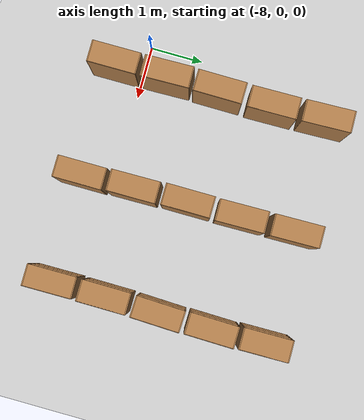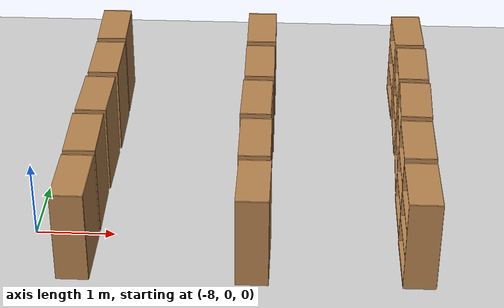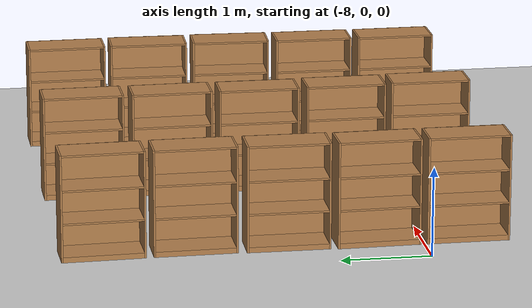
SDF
<sdf version="1.6">
 <world name="default">
  <model name="ground_plane">
   <static>1</static>
   <link name="link">
    <collision name="collision">
     <geometry><plane><normal>0 0 1</normal><size>100 100</size></plane></geometry>
     <surface>
      <contact><collide_bitmask>65535</collide_bitmask></contact>
      <friction><ode><mu>100</mu><mu2>50</mu2></ode></friction>
     </surface>
    </collision>
    <visual name="visual">
     <cast_shadows>0</cast_shadows>
     <geometry><plane><normal>0 0 1</normal><size>100 100</size></plane></geometry>
     <material>
      <script><uri>file://media/materials/scripts/gazebo.material</uri><name>Gazebo/Grey</name></script>
     </material>
    </visual>
   </link>
  </model>
  <model name="bookshelf_11">
   <link name="link">
    <inertial><mass>1</mass></inertial>
    <pose>-4.37357 0.331808 0 0 0 -1.56101</pose>
    <visual name="visual1">
     <pose>0 0.005 0.6 0 -0 0</pose>
     <geometry><box><size>0.9 0.01 1.2</size></box></geometry>
     <material>
      <script><uri>file://media/materials/scripts/gazebo.material</uri><name>Gazebo/Wood</name></script>
      <shader type="pixel"/>
     </material>
    </visual>
    <visual name="visual2">
     <pose>0.45 -0.195 0.6 0 -0 0</pose>
     <geometry><box><size>0.02 0.4 1.2</size></box></geometry>
     <material>
      <script><uri>file://media/materials/scripts/gazebo.material</uri><name>Gazebo/Wood</name></script>
      <shader type="pixel"/>
     </material>
    </visual>
    <visual name="visual3">
     <pose>-0.45 -0.195 0.6 0 -0 0</pose>
     <geometry><box><size>0.02 0.4 1.2</size></box></geometry>
     <material>
      <script><uri>file://media/materials/scripts/gazebo.material</uri><name>Gazebo/Wood</name></script>
      <shader type="pixel"/>
     </material>
    </visual>
    <visual name="visual4">
     <pose>0 -0.195 0.03 0 -0 0</pose>
     <geometry><box><size>0.88 0.4 0.06</size></box></geometry>
     <material>
      <script><uri>file://media/materials/scripts/gazebo.material</uri><name>Gazebo/Wood</name></script>
      <shader type="pixel"/>
     </material>
    </visual>
    <visual name="visual5">
     <pose>0 -0.195 1.19 0 -0 0</pose>
     <geometry><box><size>0.88 0.4 0.02</size></box></geometry>
     <material>
      <script><uri>file://media/materials/scripts/gazebo.material</uri><name>Gazebo/Wood</name></script>
      <shader type="pixel"/>
     </material>
    </visual>
    <visual name="visual6">
     <pose>0 -0.195 0.43 0 -0 0</pose>
     <geometry><box><size>0.88 0.4 0.02</size></box></geometry>
     <material>
      <script><uri>file://media/materials/scripts/gazebo.material</uri><name>Gazebo/Wood</name></script>
      <shader type="pixel"/>
     </material>
    </visual>
    <visual name="visual7">
     <pose>0 -0.195 0.8 0 -0 0</pose>
     <geometry><box><size>0.88 0.4 0.02</size></box></geometry>
     <material>
      <script><uri>file://media/materials/scripts/gazebo.material</uri><name>Gazebo/Wood</name></script>
      <shader type="pixel"/>
     </material>
    </visual>
    <collision name="back">
     <pose>0 0.005 0.6 0 -0 0</pose>
     <geometry><box><size>0.9 0.01 1.2</size></box></geometry>
     <surface>
      <friction>
       <ode><mu>1</mu><mu2>1</mu2><fdir1>0 0 0</fdir1><slip1>0</slip1><slip2>0</slip2></ode>
       <torsional>
        <coefficient>1</coefficient>
        <patch_radius>0</patch_radius>
        <surface_radius>0</surface_radius>
        <use_patch_radius>1</use_patch_radius>
        <ode><slip>0</slip></ode>
       </torsional>
      </friction>
      <bounce><restitution_coefficient>0</restitution_coefficient><threshold>1e+06</threshold></bounce>
      <contact>
       <collide_without_contact>0</collide_without_contact>
       <collide_without_contact_bitmask>1</collide_without_contact_bitmask>
       <collide_bitmask>1</collide_bitmask>
       <ode>
        <soft_cfm>0</soft_cfm>
        <soft_erp>0.2</soft_erp>
        <kp>1e+13</kp>
        <kd>1</kd>
        <max_vel>0.01</max_vel>
        <min_depth>0</min_depth>
       </ode>
       <bullet>
        <split_impulse>1</split_impulse>
        <split_impulse_penetration_threshold>-0.01</split_impulse_penetration_threshold>
        <soft_cfm>0</soft_cfm>
        <soft_erp>0.2</soft_erp>
        <kp>1e+13</kp>
        <kd>1</kd>
       </bullet>
      </contact>
     </surface>
    </collision>
    <collision name="left_side">
     <pose>0.45 -0.195 0.6 0 -0 0</pose>
     <geometry><box><size>0.02 0.4 1.2</size></box></geometry>
     <surface>
      <friction>
       <ode><mu>1</mu><mu2>1</mu2><fdir1>0 0 0</fdir1><slip1>0</slip1><slip2>0</slip2></ode>
       <torsional>
        <coefficient>1</coefficient>
        <patch_radius>0</patch_radius>
        <surface_radius>0</surface_radius>
        <use_patch_radius>1</use_patch_radius>
        <ode><slip>0</slip></ode>
       </torsional>
      </friction>
      <bounce><restitution_coefficient>0</restitution_coefficient><threshold>1e+06</threshold></bounce>
      <contact>
       <collide_without_contact>0</collide_without_contact>
       <collide_without_contact_bitmask>1</collide_without_contact_bitmask>
       <collide_bitmask>1</collide_bitmask>
       <ode>
        <soft_cfm>0</soft_cfm>
        <soft_erp>0.2</soft_erp>
        <kp>1e+13</kp>
        <kd>1</kd>
        <max_vel>0.01</max_vel>
        <min_depth>0</min_depth>
       </ode>
       <bullet>
        <split_impulse>1</split_impulse>
        <split_impulse_penetration_threshold>-0.01</split_impulse_penetration_threshold>
        <soft_cfm>0</soft_cfm>
        <soft_erp>0.2</soft_erp>
        <kp>1e+13</kp>
        <kd>1</kd>
       </bullet>
      </contact>
     </surface>
    </collision>
    <collision name="right_side">
     <pose>-0.45 -0.195 0.6 0 -0 0</pose>
     <geometry><box><size>0.02 0.4 1.2</size></box></geometry>
     <surface>
      <friction>
       <ode><mu>1</mu><mu2>1</mu2><fdir1>0 0 0</fdir1><slip1>0</slip1><slip2>0</slip2></ode>
       <torsional>
        <coefficient>1</coefficient>
        <patch_radius>0</patch_radius>
        <surface_radius>0</surface_radius>
        <use_patch_radius>1</use_patch_radius>
        <ode><slip>0</slip></ode>
       </torsional>
      </friction>
      <bounce><restitution_coefficient>0</restitution_coefficient><threshold>1e+06</threshold></bounce>
      <contact>
       <collide_without_contact>0</collide_without_contact>
       <collide_without_contact_bitmask>1</collide_without_contact_bitmask>
       <collide_bitmask>1</collide_bitmask>
       <ode>
        <soft_cfm>0</soft_cfm>
        <soft_erp>0.2</soft_erp>
        <kp>1e+13</kp>
        <kd>1</kd>
        <max_vel>0.01</max_vel>
        <min_depth>0</min_depth>
       </ode>
       <bullet>
        <split_impulse>1</split_impulse>
        <split_impulse_penetration_threshold>-0.01</split_impulse_penetration_threshold>
        <soft_cfm>0</soft_cfm>
        <soft_erp>0.2</soft_erp>
        <kp>1e+13</kp>
        <kd>1</kd>
       </bullet>
      </contact>
     </surface>
    </collision>
    <collision name="bottom">
     <pose>0 -0.195 0.03 0 -0 0</pose>
     <geometry><box><size>0.88 0.4 0.06</size></box></geometry>
     <surface>
      <friction>
       <ode><mu>1</mu><mu2>1</mu2><fdir1>0 0 0</fdir1><slip1>0</slip1><slip2>0</slip2></ode>
       <torsional>
        <coefficient>1</coefficient>
        <patch_radius>0</patch_radius>
        <surface_radius>0</surface_radius>
        <use_patch_radius>1</use_patch_radius>
        <ode><slip>0</slip></ode>
       </torsional>
      </friction>
      <bounce><restitution_coefficient>0</restitution_coefficient><threshold>1e+06</threshold></bounce>
      <contact>
       <collide_without_contact>0</collide_without_contact>
       <collide_without_contact_bitmask>1</collide_without_contact_bitmask>
       <collide_bitmask>1</collide_bitmask>
       <ode>
        <soft_cfm>0</soft_cfm>
        <soft_erp>0.2</soft_erp>
        <kp>1e+13</kp>
        <kd>1</kd>
        <max_vel>0.01</max_vel>
        <min_depth>0</min_depth>
       </ode>
       <bullet>
        <split_impulse>1</split_impulse>
        <split_impulse_penetration_threshold>-0.01</split_impulse_penetration_threshold>
        <soft_cfm>0</soft_cfm>
        <soft_erp>0.2</soft_erp>
        <kp>1e+13</kp>
        <kd>1</kd>
       </bullet>
      </contact>
     </surface>
    </collision>
    <collision name="top">
     <pose>0 -0.195 1.19 0 -0 0</pose>
     <geometry><box><size>0.88 0.4 0.02</size></box></geometry>
     <surface>
      <friction>
       <ode><mu>1</mu><mu2>1</mu2><fdir1>0 0 0</fdir1><slip1>0</slip1><slip2>0</slip2></ode>
       <torsional>
        <coefficient>1</coefficient>
        <patch_radius>0</patch_radius>
        <surface_radius>0</surface_radius>
        <use_patch_radius>1</use_patch_radius>
        <ode><slip>0</slip></ode>
       </torsional>
      </friction>
      <bounce><restitution_coefficient>0</restitution_coefficient><threshold>1e+06</threshold></bounce>
      <contact>
       <collide_without_contact>0</collide_without_contact>
       <collide_without_contact_bitmask>1</collide_without_contact_bitmask>
       <collide_bitmask>1</collide_bitmask>
       <ode>
        <soft_cfm>0</soft_cfm>
        <soft_erp>0.2</soft_erp>
        <kp>1e+13</kp>
        <kd>1</kd>
        <max_vel>0.01</max_vel>
        <min_depth>0</min_depth>
       </ode>
       <bullet>
        <split_impulse>1</split_impulse>
        <split_impulse_penetration_threshold>-0.01</split_impulse_penetration_threshold>
        <soft_cfm>0</soft_cfm>
        <soft_erp>0.2</soft_erp>
        <kp>1e+13</kp>
        <kd>1</kd>
       </bullet>
      </contact>
     </surface>
    </collision>
    <collision name="low_shelf">
     <pose>0 -0.195 0.43 0 -0 0</pose>
     <geometry><box><size>0.88 0.4 0.02</size></box></geometry>
     <surface>
      <friction>
       <ode><mu>1</mu><mu2>1</mu2><fdir1>0 0 0</fdir1><slip1>0</slip1><slip2>0</slip2></ode>
       <torsional>
        <coefficient>1</coefficient>
        <patch_radius>0</patch_radius>
        <surface_radius>0</surface_radius>
        <use_patch_radius>1</use_patch_radius>
        <ode><slip>0</slip></ode>
       </torsional>
      </friction>
      <bounce><restitution_coefficient>0</restitution_coefficient><threshold>1e+06</threshold></bounce>
      <contact>
       <collide_without_contact>0</collide_without_contact>
       <collide_without_contact_bitmask>1</collide_without_contact_bitmask>
       <collide_bitmask>1</collide_bitmask>
       <ode>
        <soft_cfm>0</soft_cfm>
        <soft_erp>0.2</soft_erp>
        <kp>1e+13</kp>
        <kd>1</kd>
        <max_vel>0.01</max_vel>
        <min_depth>0</min_depth>
       </ode>
       <bullet>
        <split_impulse>1</split_impulse>
        <split_impulse_penetration_threshold>-0.01</split_impulse_penetration_threshold>
        <soft_cfm>0</soft_cfm>
        <soft_erp>0.2</soft_erp>
        <kp>1e+13</kp>
        <kd>1</kd>
       </bullet>
      </contact>
     </surface>
    </collision>
    <collision name="high_shelf">
     <pose>0 -0.195 0.8 0 -0 0</pose>
     <geometry><box><size>0.88 0.4 0.02</size></box></geometry>
     <surface>
      <friction>
       <ode><mu>1</mu><mu2>1</mu2><fdir1>0 0 0</fdir1><slip1>0</slip1><slip2>0</slip2></ode>
       <torsional>
        <coefficient>1</coefficient>
        <patch_radius>0</patch_radius>
        <surface_radius>0</surface_radius>
        <use_patch_radius>1</use_patch_radius>
        <ode><slip>0</slip></ode>
       </torsional>
      </friction>
      <bounce><restitution_coefficient>0</restitution_coefficient><threshold>1e+06</threshold></bounce>
      <contact>
       <collide_without_contact>0</collide_without_contact>
       <collide_without_contact_bitmask>1</collide_without_contact_bitmask>
       <collide_bitmask>1</collide_bitmask>
       <ode>
        <soft_cfm>0</soft_cfm>
        <soft_erp>0.2</soft_erp>
        <kp>1e+13</kp>
        <kd>1</kd>
        <max_vel>0.01</max_vel>
        <min_depth>0</min_depth>
       </ode>
       <bullet>
        <split_impulse>1</split_impulse>
        <split_impulse_penetration_threshold>-0.01</split_impulse_penetration_threshold>
        <soft_cfm>0</soft_cfm>
        <soft_erp>0.2</soft_erp>
        <kp>1e+13</kp>
        <kd>1</kd>
       </bullet>
      </contact>
     </surface>
    </collision>
   </link>
   <model name="bookshelf">
    <static>1</static>
    <link name="link">
     <inertial><mass>1</mass></inertial>
     <collision name="back">
      <pose>0 0.005 0.6 0 -0 0</pose>
      <geometry><box><size>0.9 0.01 1.2</size></box></geometry>
     </collision>
     <visual name="visual1">
      <pose>0 0.005 0.6 0 -0 0</pose>
      <geometry><box><size>0.9 0.01 1.2</size></box></geometry>
      <material>
       <script><uri>file://media/materials/scripts/gazebo.material</uri><name>Gazebo/Wood</name></script>
      </material>
     </visual>
     <collision name="left_side">
      <pose>0.45 -0.195 0.6 0 -0 0</pose>
      <geometry><box><size>0.02 0.4 1.2</size></box></geometry>
     </collision>
     <visual name="visual2">
      <pose>0.45 -0.195 0.6 0 -0 0</pose>
      <geometry><box><size>0.02 0.4 1.2</size></box></geometry>
      <material>
       <script><uri>file://media/materials/scripts/gazebo.material</uri><name>Gazebo/Wood</name></script>
      </material>
     </visual>
     <collision name="right_side">
      <pose>-0.45 -0.195 0.6 0 -0 0</pose>
      <geometry><box><size>0.02 0.4 1.2</size></box></geometry>
     </collision>
     <visual name="visual3">
      <pose>-0.45 -0.195 0.6 0 -0 0</pose>
      <geometry><box><size>0.02 0.4 1.2</size></box></geometry>
      <material>
       <script><uri>file://media/materials/scripts/gazebo.material</uri><name>Gazebo/Wood</name></script>
      </material>
     </visual>
     <collision name="bottom">
      <pose>0 -0.195 0.03 0 -0 0</pose>
      <geometry><box><size>0.88 0.4 0.06</size></box></geometry>
     </collision>
     <visual name="visual4">
      <pose>0 -0.195 0.03 0 -0 0</pose>
      <geometry><box><size>0.88 0.4 0.06</size></box></geometry>
      <material>
       <script><uri>file://media/materials/scripts/gazebo.material</uri><name>Gazebo/Wood</name></script>
      </material>
     </visual>
     <collision name="top">
      <pose>0 -0.195 1.19 0 -0 0</pose>
      <geometry><box><size>0.88 0.4 0.02</size></box></geometry>
     </collision>
     <visual name="visual5">
      <pose>0 -0.195 1.19 0 -0 0</pose>
      <geometry><box><size>0.88 0.4 0.02</size></box></geometry>
      <material>
       <script><uri>file://media/materials/scripts/gazebo.material</uri><name>Gazebo/Wood</name></script>
      </material>
     </visual>
     <collision name="low_shelf">
      <pose>0 -0.195 0.43 0 -0 0</pose>
      <geometry><box><size>0.88 0.4 0.02</size></box></geometry>
     </collision>
     <visual name="visual6">
      <pose>0 -0.195 0.43 0 -0 0</pose>
      <geometry><box><size>0.88 0.4 0.02</size></box></geometry>
      <material>
       <script><uri>file://media/materials/scripts/gazebo.material</uri><name>Gazebo/Wood</name></script>
      </material>
     </visual>
     <collision name="high_shelf">
      <pose>0 -0.195 0.8 0 -0 0</pose>
      <geometry><box><size>0.88 0.4 0.02</size></box></geometry>
     </collision>
     <visual name="visual7">
      <pose>0 -0.195 0.8 0 -0 0</pose>
      <geometry><box><size>0.88 0.4 0.02</size></box></geometry>
      <material>
       <script><uri>file://media/materials/scripts/gazebo.material</uri><name>Gazebo/Wood</name></script>
      </material>
     </visual>
    </link>
    <pose>-4.36309 -0.663367 0 0 0 -1.59157</pose>
   </model>
   <model name="bookshelf_0">
    <static>1</static>
    <link name="link">
     <inertial><mass>1</mass></inertial>
     <collision name="back">
      <pose>0 0.005 0.6 0 -0 0</pose>
      <geometry><box><size>0.9 0.01 1.2</size></box></geometry>
     </collision>
     <visual name="visual1">
      <pose>0 0.005 0.6 0 -0 0</pose>
      <geometry><box><size>0.9 0.01 1.2</size></box></geometry>
      <material>
       <script><uri>file://media/materials/scripts/gazebo.material</uri><name>Gazebo/Wood</name></script>
      </material>
     </visual>
     <collision name="left_side">
      <pose>0.45 -0.195 0.6 0 -0 0</pose>
      <geometry><box><size>0.02 0.4 1.2</size></box></geometry>
     </collision>
     <visual name="visual2">
      <pose>0.45 -0.195 0.6 0 -0 0</pose>
      <geometry><box><size>0.02 0.4 1.2</size></box></geometry>
      <material>
       <script><uri>file://media/materials/scripts/gazebo.material</uri><name>Gazebo/Wood</name></script>
      </material>
     </visual>
     <collision name="right_side">
      <pose>-0.45 -0.195 0.6 0 -0 0</pose>
      <geometry><box><size>0.02 0.4 1.2</size></box></geometry>
     </collision>
     <visual name="visual3">
      <pose>-0.45 -0.195 0.6 0 -0 0</pose>
      <geometry><box><size>0.02 0.4 1.2</size></box></geometry>
      <material>
       <script><uri>file://media/materials/scripts/gazebo.material</uri><name>Gazebo/Wood</name></script>
      </material>
     </visual>
     <collision name="bottom">
      <pose>0 -0.195 0.03 0 -0 0</pose>
      <geometry><box><size>0.88 0.4 0.06</size></box></geometry>
     </collision>
     <visual name="visual4">
      <pose>0 -0.195 0.03 0 -0 0</pose>
      <geometry><box><size>0.88 0.4 0.06</size></box></geometry>
      <material>
       <script><uri>file://media/materials/scripts/gazebo.material</uri><name>Gazebo/Wood</name></script>
      </material>
     </visual>
     <collision name="top">
      <pose>0 -0.195 1.19 0 -0 0</pose>
      <geometry><box><size>0.88 0.4 0.02</size></box></geometry>
     </collision>
     <visual name="visual5">
      <pose>0 -0.195 1.19 0 -0 0</pose>
      <geometry><box><size>0.88 0.4 0.02</size></box></geometry>
      <material>
       <script><uri>file://media/materials/scripts/gazebo.material</uri><name>Gazebo/Wood</name></script>
      </material>
     </visual>
     <collision name="low_shelf">
      <pose>0 -0.195 0.43 0 -0 0</pose>
      <geometry><box><size>0.88 0.4 0.02</size></box></geometry>
     </collision>
     <visual name="visual6">
      <pose>0 -0.195 0.43 0 -0 0</pose>
      <geometry><box><size>0.88 0.4 0.02</size></box></geometry>
      <material>
       <script><uri>file://media/materials/scripts/gazebo.material</uri><name>Gazebo/Wood</name></script>
      </material>
     </visual>
     <collision name="high_shelf">
      <pose>0 -0.195 0.8 0 -0 0</pose>
      <geometry><box><size>0.88 0.4 0.02</size></box></geometry>
     </collision>
     <visual name="visual7">
      <pose>0 -0.195 0.8 0 -0 0</pose>
      <geometry><box><size>0.88 0.4 0.02</size></box></geometry>
      <material>
       <script><uri>file://media/materials/scripts/gazebo.material</uri><name>Gazebo/Wood</name></script>
      </material>
     </visual>
    </link>
    <pose>-4.38011 -1.66248 0 0 0 -1.60816</pose>
   </model>
   <model name="bookshelf_1">
    <static>1</static>
    <link name="link">
     <inertial><mass>1</mass></inertial>
     <collision name="back">
      <pose>0 0.005 0.6 0 -0 0</pose>
      <geometry><box><size>0.9 0.01 1.2</size></box></geometry>
     </collision>
     <visual name="visual1">
      <pose>0 0.005 0.6 0 -0 0</pose>
      <geometry><box><size>0.9 0.01 1.2</size></box></geometry>
      <material>
       <script><uri>file://media/materials/scripts/gazebo.material</uri><name>Gazebo/Wood</name></script>
      </material>
     </visual>
     <collision name="left_side">
      <pose>0.45 -0.195 0.6 0 -0 0</pose>
      <geometry><box><size>0.02 0.4 1.2</size></box></geometry>
     </collision>
     <visual name="visual2">
      <pose>0.45 -0.195 0.6 0 -0 0</pose>
      <geometry><box><size>0.02 0.4 1.2</size></box></geometry>
      <material>
       <script><uri>file://media/materials/scripts/gazebo.material</uri><name>Gazebo/Wood</name></script>
      </material>
     </visual>
     <collision name="right_side">
      <pose>-0.45 -0.195 0.6 0 -0 0</pose>
      <geometry><box><size>0.02 0.4 1.2</size></box></geometry>
     </collision>
     <visual name="visual3">
      <pose>-0.45 -0.195 0.6 0 -0 0</pose>
      <geometry><box><size>0.02 0.4 1.2</size></box></geometry>
      <material>
       <script><uri>file://media/materials/scripts/gazebo.material</uri><name>Gazebo/Wood</name></script>
      </material>
     </visual>
     <collision name="bottom">
      <pose>0 -0.195 0.03 0 -0 0</pose>
      <geometry><box><size>0.88 0.4 0.06</size></box></geometry>
     </collision>
     <visual name="visual4">
      <pose>0 -0.195 0.03 0 -0 0</pose>
      <geometry><box><size>0.88 0.4 0.06</size></box></geometry>
      <material>
       <script><uri>file://media/materials/scripts/gazebo.material</uri><name>Gazebo/Wood</name></script>
      </material>
     </visual>
     <collision name="top">
      <pose>0 -0.195 1.19 0 -0 0</pose>
      <geometry><box><size>0.88 0.4 0.02</size></box></geometry>
     </collision>
     <visual name="visual5">
      <pose>0 -0.195 1.19 0 -0 0</pose>
      <geometry><box><size>0.88 0.4 0.02</size></box></geometry>
      <material>
       <script><uri>file://media/materials/scripts/gazebo.material</uri><name>Gazebo/Wood</name></script>
      </material>
     </visual>
     <collision name="low_shelf">
      <pose>0 -0.195 0.43 0 -0 0</pose>
      <geometry><box><size>0.88 0.4 0.02</size></box></geometry>
     </collision>
     <visual name="visual6">
      <pose>0 -0.195 0.43 0 -0 0</pose>
      <geometry><box><size>0.88 0.4 0.02</size></box></geometry>
      <material>
       <script><uri>file://media/materials/scripts/gazebo.material</uri><name>Gazebo/Wood</name></script>
      </material>
     </visual>
     <collision name="high_shelf">
      <pose>0 -0.195 0.8 0 -0 0</pose>
      <geometry><box><size>0.88 0.4 0.02</size></box></geometry>
     </collision>
     <visual name="visual7">
      <pose>0 -0.195 0.8 0 -0 0</pose>
      <geometry><box><size>0.88 0.4 0.02</size></box></geometry>
      <material>
       <script><uri>file://media/materials/scripts/gazebo.material</uri><name>Gazebo/Wood</name></script>
      </material>
     </visual>
    </link>
    <pose>-4.40991 -2.6595 0 0 0 -1.57645</pose>
   </model>
   <model name="bookshelf_10">
    <static>1</static>
    <link name="link">
     <inertial><mass>1</mass></inertial>
     <collision name="back">
      <pose>0 0.005 0.6 0 -0 0</pose>
      <geometry><box><size>0.9 0.01 1.2</size></box></geometry>
     </collision>
     <visual name="visual1">
      <pose>0 0.005 0.6 0 -0 0</pose>
      <geometry><box><size>0.9 0.01 1.2</size></box></geometry>
      <material>
       <script><uri>file://media/materials/scripts/gazebo.material</uri><name>Gazebo/Wood</name></script>
      </material>
     </visual>
     <collision name="left_side">
      <pose>0.45 -0.195 0.6 0 -0 0</pose>
      <geometry><box><size>0.02 0.4 1.2</size></box></geometry>
     </collision>
     <visual name="visual2">
      <pose>0.45 -0.195 0.6 0 -0 0</pose>
      <geometry><box><size>0.02 0.4 1.2</size></box></geometry>
      <material>
       <script><uri>file://media/materials/scripts/gazebo.material</uri><name>Gazebo/Wood</name></script>
      </material>
     </visual>
     <collision name="right_side">
      <pose>-0.45 -0.195 0.6 0 -0 0</pose>
      <geometry><box><size>0.02 0.4 1.2</size></box></geometry>
     </collision>
     <visual name="visual3">
      <pose>-0.45 -0.195 0.6 0 -0 0</pose>
      <geometry><box><size>0.02 0.4 1.2</size></box></geometry>
      <material>
       <script><uri>file://media/materials/scripts/gazebo.material</uri><name>Gazebo/Wood</name></script>
      </material>
     </visual>
     <collision name="bottom">
      <pose>0 -0.195 0.03 0 -0 0</pose>
      <geometry><box><size>0.88 0.4 0.06</size></box></geometry>
     </collision>
     <visual name="visual4">
      <pose>0 -0.195 0.03 0 -0 0</pose>
      <geometry><box><size>0.88 0.4 0.06</size></box></geometry>
      <material>
       <script><uri>file://media/materials/scripts/gazebo.material</uri><name>Gazebo/Wood</name></script>
      </material>
     </visual>
     <collision name="top">
      <pose>0 -0.195 1.19 0 -0 0</pose>
      <geometry><box><size>0.88 0.4 0.02</size></box></geometry>
     </collision>
     <visual name="visual5">
      <pose>0 -0.195 1.19 0 -0 0</pose>
      <geometry><box><size>0.88 0.4 0.02</size></box></geometry>
      <material>
       <script><uri>file://media/materials/scripts/gazebo.material</uri><name>Gazebo/Wood</name></script>
      </material>
     </visual>
     <collision name="low_shelf">
      <pose>0 -0.195 0.43 0 -0 0</pose>
      <geometry><box><size>0.88 0.4 0.02</size></box></geometry>
     </collision>
     <visual name="visual6">
      <pose>0 -0.195 0.43 0 -0 0</pose>
      <geometry><box><size>0.88 0.4 0.02</size></box></geometry>
      <material>
       <script><uri>file://media/materials/scripts/gazebo.material</uri><name>Gazebo/Wood</name></script>
      </material>
     </visual>
     <collision name="high_shelf">
      <pose>0 -0.195 0.8 0 -0 0</pose>
      <geometry><box><size>0.88 0.4 0.02</size></box></geometry>
     </collision>
     <visual name="visual7">
      <pose>0 -0.195 0.8 0 -0 0</pose>
      <geometry><box><size>0.88 0.4 0.02</size></box></geometry>
      <material>
       <script><uri>file://media/materials/scripts/gazebo.material</uri><name>Gazebo/Wood</name></script>
      </material>
     </visual>
    </link>
    <pose>-8.5831 -1.68024 0 0 0 -1.57912</pose>
   </model>
   <model name="bookshelf_11">
    <static>1</static>
    <link name="link">
     <inertial><mass>1</mass></inertial>
     <collision name="back">
      <pose>0 0.005 0.6 0 -0 0</pose>
      <geometry><box><size>0.9 0.01 1.2</size></box></geometry>
     </collision>
     <visual name="visual1">
      <pose>0 0.005 0.6 0 -0 0</pose>
      <geometry><box><size>0.9 0.01 1.2</size></box></geometry>
      <material>
       <script><uri>file://media/materials/scripts/gazebo.material</uri><name>Gazebo/Wood</name></script>
      </material>
     </visual>
     <collision name="left_side">
      <pose>0.45 -0.195 0.6 0 -0 0</pose>
      <geometry><box><size>0.02 0.4 1.2</size></box></geometry>
     </collision>
     <visual name="visual2">
      <pose>0.45 -0.195 0.6 0 -0 0</pose>
      <geometry><box><size>0.02 0.4 1.2</size></box></geometry>
      <material>
       <script><uri>file://media/materials/scripts/gazebo.material</uri><name>Gazebo/Wood</name></script>
      </material>
     </visual>
     <collision name="right_side">
      <pose>-0.45 -0.195 0.6 0 -0 0</pose>
      <geometry><box><size>0.02 0.4 1.2</size></box></geometry>
     </collision>
     <visual name="visual3">
      <pose>-0.45 -0.195 0.6 0 -0 0</pose>
      <geometry><box><size>0.02 0.4 1.2</size></box></geometry>
      <material>
       <script><uri>file://media/materials/scripts/gazebo.material</uri><name>Gazebo/Wood</name></script>
      </material>
     </visual>
     <collision name="bottom">
      <pose>0 -0.195 0.03 0 -0 0</pose>
      <geometry><box><size>0.88 0.4 0.06</size></box></geometry>
     </collision>
     <visual name="visual4">
      <pose>0 -0.195 0.03 0 -0 0</pose>
      <geometry><box><size>0.88 0.4 0.06</size></box></geometry>
      <material>
       <script><uri>file://media/materials/scripts/gazebo.material</uri><name>Gazebo/Wood</name></script>
      </material>
     </visual>
     <collision name="top">
      <pose>0 -0.195 1.19 0 -0 0</pose>
      <geometry><box><size>0.88 0.4 0.02</size></box></geometry>
     </collision>
     <visual name="visual5">
      <pose>0 -0.195 1.19 0 -0 0</pose>
      <geometry><box><size>0.88 0.4 0.02</size></box></geometry>
      <material>
       <script><uri>file://media/materials/scripts/gazebo.material</uri><name>Gazebo/Wood</name></script>
      </material>
     </visual>
     <collision name="low_shelf">
      <pose>0 -0.195 0.43 0 -0 0</pose>
      <geometry><box><size>0.88 0.4 0.02</size></box></geometry>
     </collision>
     <visual name="visual6">
      <pose>0 -0.195 0.43 0 -0 0</pose>
      <geometry><box><size>0.88 0.4 0.02</size></box></geometry>
      <material>
       <script><uri>file://media/materials/scripts/gazebo.material</uri><name>Gazebo/Wood</name></script>
      </material>
     </visual>
     <collision name="high_shelf">
      <pose>0 -0.195 0.8 0 -0 0</pose>
      <geometry><box><size>0.88 0.4 0.02</size></box></geometry>
     </collision>
     <visual name="visual7">
      <pose>0 -0.195 0.8 0 -0 0</pose>
      <geometry><box><size>0.88 0.4 0.02</size></box></geometry>
      <material>
       <script><uri>file://media/materials/scripts/gazebo.material</uri><name>Gazebo/Wood</name></script>
      </material>
     </visual>
    </link>
    <pose>-8.593 -2.66505 0 0 0 -1.55255</pose>
   </model>
   <model name="bookshelf_12">
    <static>1</static>
    <link name="link">
     <inertial><mass>1</mass></inertial>
     <collision name="back">
      <pose>0 0.005 0.6 0 -0 0</pose>
      <geometry><box><size>0.9 0.01 1.2</size></box></geometry>
     </collision>
     <visual name="visual1">
      <pose>0 0.005 0.6 0 -0 0</pose>
      <geometry><box><size>0.9 0.01 1.2</size></box></geometry>
      <material>
       <script><uri>file://media/materials/scripts/gazebo.material</uri><name>Gazebo/Wood</name></script>
      </material>
     </visual>
     <collision name="left_side">
      <pose>0.45 -0.195 0.6 0 -0 0</pose>
      <geometry><box><size>0.02 0.4 1.2</size></box></geometry>
     </collision>
     <visual name="visual2">
      <pose>0.45 -0.195 0.6 0 -0 0</pose>
      <geometry><box><size>0.02 0.4 1.2</size></box></geometry>
      <material>
       <script><uri>file://media/materials/scripts/gazebo.material</uri><name>Gazebo/Wood</name></script>
      </material>
     </visual>
     <collision name="right_side">
      <pose>-0.45 -0.195 0.6 0 -0 0</pose>
      <geometry><box><size>0.02 0.4 1.2</size></box></geometry>
     </collision>
     <visual name="visual3">
      <pose>-0.45 -0.195 0.6 0 -0 0</pose>
      <geometry><box><size>0.02 0.4 1.2</size></box></geometry>
      <material>
       <script><uri>file://media/materials/scripts/gazebo.material</uri><name>Gazebo/Wood</name></script>
      </material>
     </visual>
     <collision name="bottom">
      <pose>0 -0.195 0.03 0 -0 0</pose>
      <geometry><box><size>0.88 0.4 0.06</size></box></geometry>
     </collision>
     <visual name="visual4">
      <pose>0 -0.195 0.03 0 -0 0</pose>
      <geometry><box><size>0.88 0.4 0.06</size></box></geometry>
      <material>
       <script><uri>file://media/materials/scripts/gazebo.material</uri><name>Gazebo/Wood</name></script>
      </material>
     </visual>
     <collision name="top">
      <pose>0 -0.195 1.19 0 -0 0</pose>
      <geometry><box><size>0.88 0.4 0.02</size></box></geometry>
     </collision>
     <visual name="visual5">
      <pose>0 -0.195 1.19 0 -0 0</pose>
      <geometry><box><size>0.88 0.4 0.02</size></box></geometry>
      <material>
       <script><uri>file://media/materials/scripts/gazebo.material</uri><name>Gazebo/Wood</name></script>
      </material>
     </visual>
     <collision name="low_shelf">
      <pose>0 -0.195 0.43 0 -0 0</pose>
      <geometry><box><size>0.88 0.4 0.02</size></box></geometry>
     </collision>
     <visual name="visual6">
      <pose>0 -0.195 0.43 0 -0 0</pose>
      <geometry><box><size>0.88 0.4 0.02</size></box></geometry>
      <material>
       <script><uri>file://media/materials/scripts/gazebo.material</uri><name>Gazebo/Wood</name></script>
      </material>
     </visual>
     <collision name="high_shelf">
      <pose>0 -0.195 0.8 0 -0 0</pose>
      <geometry><box><size>0.88 0.4 0.02</size></box></geometry>
     </collision>
     <visual name="visual7">
      <pose>0 -0.195 0.8 0 -0 0</pose>
      <geometry><box><size>0.88 0.4 0.02</size></box></geometry>
      <material>
       <script><uri>file://media/materials/scripts/gazebo.material</uri><name>Gazebo/Wood</name></script>
      </material>
     </visual>
    </link>
    <pose>-8.58593 -3.66016 0 0 0 -1.57083</pose>
   </model>
   <model name="bookshelf_2">
    <static>1</static>
    <link name="link">
     <inertial><mass>1</mass></inertial>
     <collision name="back">
      <pose>0 0.005 0.6 0 -0 0</pose>
      <geometry><box><size>0.9 0.01 1.2</size></box></geometry>
     </collision>
     <visual name="visual1">
      <pose>0 0.005 0.6 0 -0 0</pose>
      <geometry><box><size>0.9 0.01 1.2</size></box></geometry>
      <material>
       <script><uri>file://media/materials/scripts/gazebo.material</uri><name>Gazebo/Wood</name></script>
      </material>
     </visual>
     <collision name="left_side">
      <pose>0.45 -0.195 0.6 0 -0 0</pose>
      <geometry><box><size>0.02 0.4 1.2</size></box></geometry>
     </collision>
     <visual name="visual2">
      <pose>0.45 -0.195 0.6 0 -0 0</pose>
      <geometry><box><size>0.02 0.4 1.2</size></box></geometry>
      <material>
       <script><uri>file://media/materials/scripts/gazebo.material</uri><name>Gazebo/Wood</name></script>
      </material>
     </visual>
     <collision name="right_side">
      <pose>-0.45 -0.195 0.6 0 -0 0</pose>
      <geometry><box><size>0.02 0.4 1.2</size></box></geometry>
     </collision>
     <visual name="visual3">
      <pose>-0.45 -0.195 0.6 0 -0 0</pose>
      <geometry><box><size>0.02 0.4 1.2</size></box></geometry>
      <material>
       <script><uri>file://media/materials/scripts/gazebo.material</uri><name>Gazebo/Wood</name></script>
      </material>
     </visual>
     <collision name="bottom">
      <pose>0 -0.195 0.03 0 -0 0</pose>
      <geometry><box><size>0.88 0.4 0.06</size></box></geometry>
     </collision>
     <visual name="visual4">
      <pose>0 -0.195 0.03 0 -0 0</pose>
      <geometry><box><size>0.88 0.4 0.06</size></box></geometry>
      <material>
       <script><uri>file://media/materials/scripts/gazebo.material</uri><name>Gazebo/Wood</name></script>
      </material>
     </visual>
     <collision name="top">
      <pose>0 -0.195 1.19 0 -0 0</pose>
      <geometry><box><size>0.88 0.4 0.02</size></box></geometry>
     </collision>
     <visual name="visual5">
      <pose>0 -0.195 1.19 0 -0 0</pose>
      <geometry><box><size>0.88 0.4 0.02</size></box></geometry>
      <material>
       <script><uri>file://media/materials/scripts/gazebo.material</uri><name>Gazebo/Wood</name></script>
      </material>
     </visual>
     <collision name="low_shelf">
      <pose>0 -0.195 0.43 0 -0 0</pose>
      <geometry><box><size>0.88 0.4 0.02</size></box></geometry>
     </collision>
     <visual name="visual6">
      <pose>0 -0.195 0.43 0 -0 0</pose>
      <geometry><box><size>0.88 0.4 0.02</size></box></geometry>
      <material>
       <script><uri>file://media/materials/scripts/gazebo.material</uri><name>Gazebo/Wood</name></script>
      </material>
     </visual>
     <collision name="high_shelf">
      <pose>0 -0.195 0.8 0 -0 0</pose>
      <geometry><box><size>0.88 0.4 0.02</size></box></geometry>
     </collision>
     <visual name="visual7">
      <pose>0 -0.195 0.8 0 -0 0</pose>
      <geometry><box><size>0.88 0.4 0.02</size></box></geometry>
      <material>
       <script><uri>file://media/materials/scripts/gazebo.material</uri><name>Gazebo/Wood</name></script>
      </material>
     </visual>
    </link>
    <pose>-4.41887 -3.65651 0 0 0 -1.56676</pose>
   </model>
   <model name="bookshelf_3">
    <static>1</static>
    <link name="link">
     <inertial><mass>1</mass></inertial>
     <collision name="back">
      <pose>0 0.005 0.6 0 -0 0</pose>
      <geometry><box><size>0.9 0.01 1.2</size></box></geometry>
     </collision>
     <visual name="visual1">
      <pose>0 0.005 0.6 0 -0 0</pose>
      <geometry><box><size>0.9 0.01 1.2</size></box></geometry>
      <material>
       <script><uri>file://media/materials/scripts/gazebo.material</uri><name>Gazebo/Wood</name></script>
      </material>
     </visual>
     <collision name="left_side">
      <pose>0.45 -0.195 0.6 0 -0 0</pose>
      <geometry><box><size>0.02 0.4 1.2</size></box></geometry>
     </collision>
     <visual name="visual2">
      <pose>0.45 -0.195 0.6 0 -0 0</pose>
      <geometry><box><size>0.02 0.4 1.2</size></box></geometry>
      <material>
       <script><uri>file://media/materials/scripts/gazebo.material</uri><name>Gazebo/Wood</name></script>
      </material>
     </visual>
     <collision name="right_side">
      <pose>-0.45 -0.195 0.6 0 -0 0</pose>
      <geometry><box><size>0.02 0.4 1.2</size></box></geometry>
     </collision>
     <visual name="visual3">
      <pose>-0.45 -0.195 0.6 0 -0 0</pose>
      <geometry><box><size>0.02 0.4 1.2</size></box></geometry>
      <material>
       <script><uri>file://media/materials/scripts/gazebo.material</uri><name>Gazebo/Wood</name></script>
      </material>
     </visual>
     <collision name="bottom">
      <pose>0 -0.195 0.03 0 -0 0</pose>
      <geometry><box><size>0.88 0.4 0.06</size></box></geometry>
     </collision>
     <visual name="visual4">
      <pose>0 -0.195 0.03 0 -0 0</pose>
      <geometry><box><size>0.88 0.4 0.06</size></box></geometry>
      <material>
       <script><uri>file://media/materials/scripts/gazebo.material</uri><name>Gazebo/Wood</name></script>
      </material>
     </visual>
     <collision name="top">
      <pose>0 -0.195 1.19 0 -0 0</pose>
      <geometry><box><size>0.88 0.4 0.02</size></box></geometry>
     </collision>
     <visual name="visual5">
      <pose>0 -0.195 1.19 0 -0 0</pose>
      <geometry><box><size>0.88 0.4 0.02</size></box></geometry>
      <material>
       <script><uri>file://media/materials/scripts/gazebo.material</uri><name>Gazebo/Wood</name></script>
      </material>
     </visual>
     <collision name="low_shelf">
      <pose>0 -0.195 0.43 0 -0 0</pose>
      <geometry><box><size>0.88 0.4 0.02</size></box></geometry>
     </collision>
     <visual name="visual6">
      <pose>0 -0.195 0.43 0 -0 0</pose>
      <geometry><box><size>0.88 0.4 0.02</size></box></geometry>
      <material>
       <script><uri>file://media/materials/scripts/gazebo.material</uri><name>Gazebo/Wood</name></script>
      </material>
     </visual>
     <collision name="high_shelf">
      <pose>0 -0.195 0.8 0 -0 0</pose>
      <geometry><box><size>0.88 0.4 0.02</size></box></geometry>
     </collision>
     <visual name="visual7">
      <pose>0 -0.195 0.8 0 -0 0</pose>
      <geometry><box><size>0.88 0.4 0.02</size></box></geometry>
      <material>
       <script><uri>file://media/materials/scripts/gazebo.material</uri><name>Gazebo/Wood</name></script>
      </material>
     </visual>
    </link>
    <pose>-6.45602 0.338859 0 0 0 -1.55741</pose>
   </model>
   <model name="bookshelf_4">
    <static>1</static>
    <link name="link">
     <inertial><mass>1</mass></inertial>
     <collision name="back">
      <pose>0 0.005 0.6 0 -0 0</pose>
      <geometry><box><size>0.9 0.01 1.2</size></box></geometry>
     </collision>
     <visual name="visual1">
      <pose>0 0.005 0.6 0 -0 0</pose>
      <geometry><box><size>0.9 0.01 1.2</size></box></geometry>
      <material>
       <script><uri>file://media/materials/scripts/gazebo.material</uri><name>Gazebo/Wood</name></script>
      </material>
     </visual>
     <collision name="left_side">
      <pose>0.45 -0.195 0.6 0 -0 0</pose>
      <geometry><box><size>0.02 0.4 1.2</size></box></geometry>
     </collision>
     <visual name="visual2">
      <pose>0.45 -0.195 0.6 0 -0 0</pose>
      <geometry><box><size>0.02 0.4 1.2</size></box></geometry>
      <material>
       <script><uri>file://media/materials/scripts/gazebo.material</uri><name>Gazebo/Wood</name></script>
      </material>
     </visual>
     <collision name="right_side">
      <pose>-0.45 -0.195 0.6 0 -0 0</pose>
      <geometry><box><size>0.02 0.4 1.2</size></box></geometry>
     </collision>
     <visual name="visual3">
      <pose>-0.45 -0.195 0.6 0 -0 0</pose>
      <geometry><box><size>0.02 0.4 1.2</size></box></geometry>
      <material>
       <script><uri>file://media/materials/scripts/gazebo.material</uri><name>Gazebo/Wood</name></script>
      </material>
     </visual>
     <collision name="bottom">
      <pose>0 -0.195 0.03 0 -0 0</pose>
      <geometry><box><size>0.88 0.4 0.06</size></box></geometry>
     </collision>
     <visual name="visual4">
      <pose>0 -0.195 0.03 0 -0 0</pose>
      <geometry><box><size>0.88 0.4 0.06</size></box></geometry>
      <material>
       <script><uri>file://media/materials/scripts/gazebo.material</uri><name>Gazebo/Wood</name></script>
      </material>
     </visual>
     <collision name="top">
      <pose>0 -0.195 1.19 0 -0 0</pose>
      <geometry><box><size>0.88 0.4 0.02</size></box></geometry>
     </collision>
     <visual name="visual5">
      <pose>0 -0.195 1.19 0 -0 0</pose>
      <geometry><box><size>0.88 0.4 0.02</size></box></geometry>
      <material>
       <script><uri>file://media/materials/scripts/gazebo.material</uri><name>Gazebo/Wood</name></script>
      </material>
     </visual>
     <collision name="low_shelf">
      <pose>0 -0.195 0.43 0 -0 0</pose>
      <geometry><box><size>0.88 0.4 0.02</size></box></geometry>
     </collision>
     <visual name="visual6">
      <pose>0 -0.195 0.43 0 -0 0</pose>
      <geometry><box><size>0.88 0.4 0.02</size></box></geometry>
      <material>
       <script><uri>file://media/materials/scripts/gazebo.material</uri><name>Gazebo/Wood</name></script>
      </material>
     </visual>
     <collision name="high_shelf">
      <pose>0 -0.195 0.8 0 -0 0</pose>
      <geometry><box><size>0.88 0.4 0.02</size></box></geometry>
     </collision>
     <visual name="visual7">
      <pose>0 -0.195 0.8 0 -0 0</pose>
      <geometry><box><size>0.88 0.4 0.02</size></box></geometry>
      <material>
       <script><uri>file://media/materials/scripts/gazebo.material</uri><name>Gazebo/Wood</name></script>
      </material>
     </visual>
    </link>
    <pose>-6.44989 -0.675432 -0 0 0 -1.55857</pose>
   </model>
   <model name="bookshelf_5">
    <static>1</static>
    <link name="link">
     <inertial><mass>1</mass></inertial>
     <collision name="back">
      <pose>0 0.005 0.6 0 -0 0</pose>
      <geometry><box><size>0.9 0.01 1.2</size></box></geometry>
     </collision>
     <visual name="visual1">
      <pose>0 0.005 0.6 0 -0 0</pose>
      <geometry><box><size>0.9 0.01 1.2</size></box></geometry>
      <material>
       <script><uri>file://media/materials/scripts/gazebo.material</uri><name>Gazebo/Wood</name></script>
      </material>
     </visual>
     <collision name="left_side">
      <pose>0.45 -0.195 0.6 0 -0 0</pose>
      <geometry><box><size>0.02 0.4 1.2</size></box></geometry>
     </collision>
     <visual name="visual2">
      <pose>0.45 -0.195 0.6 0 -0 0</pose>
      <geometry><box><size>0.02 0.4 1.2</size></box></geometry>
      <material>
       <script><uri>file://media/materials/scripts/gazebo.material</uri><name>Gazebo/Wood</name></script>
      </material>
     </visual>
     <collision name="right_side">
      <pose>-0.45 -0.195 0.6 0 -0 0</pose>
      <geometry><box><size>0.02 0.4 1.2</size></box></geometry>
     </collision>
     <visual name="visual3">
      <pose>-0.45 -0.195 0.6 0 -0 0</pose>
      <geometry><box><size>0.02 0.4 1.2</size></box></geometry>
      <material>
       <script><uri>file://media/materials/scripts/gazebo.material</uri><name>Gazebo/Wood</name></script>
      </material>
     </visual>
     <collision name="bottom">
      <pose>0 -0.195 0.03 0 -0 0</pose>
      <geometry><box><size>0.88 0.4 0.06</size></box></geometry>
     </collision>
     <visual name="visual4">
      <pose>0 -0.195 0.03 0 -0 0</pose>
      <geometry><box><size>0.88 0.4 0.06</size></box></geometry>
      <material>
       <script><uri>file://media/materials/scripts/gazebo.material</uri><name>Gazebo/Wood</name></script>
      </material>
     </visual>
     <collision name="top">
      <pose>0 -0.195 1.19 0 -0 0</pose>
      <geometry><box><size>0.88 0.4 0.02</size></box></geometry>
     </collision>
     <visual name="visual5">
      <pose>0 -0.195 1.19 0 -0 0</pose>
      <geometry><box><size>0.88 0.4 0.02</size></box></geometry>
      <material>
       <script><uri>file://media/materials/scripts/gazebo.material</uri><name>Gazebo/Wood</name></script>
      </material>
     </visual>
     <collision name="low_shelf">
      <pose>0 -0.195 0.43 0 -0 0</pose>
      <geometry><box><size>0.88 0.4 0.02</size></box></geometry>
     </collision>
     <visual name="visual6">
      <pose>0 -0.195 0.43 0 -0 0</pose>
      <geometry><box><size>0.88 0.4 0.02</size></box></geometry>
      <material>
       <script><uri>file://media/materials/scripts/gazebo.material</uri><name>Gazebo/Wood</name></script>
      </material>
     </visual>
     <collision name="high_shelf">
      <pose>0 -0.195 0.8 0 -0 0</pose>
      <geometry><box><size>0.88 0.4 0.02</size></box></geometry>
     </collision>
     <visual name="visual7">
      <pose>0 -0.195 0.8 0 -0 0</pose>
      <geometry><box><size>0.88 0.4 0.02</size></box></geometry>
      <material>
       <script><uri>file://media/materials/scripts/gazebo.material</uri><name>Gazebo/Wood</name></script>
      </material>
     </visual>
    </link>
    <pose>-6.45506 -1.67991 0 0 0 -1.5752</pose>
   </model>
   <model name="bookshelf_6">
    <static>1</static>
    <link name="link">
     <inertial><mass>1</mass></inertial>
     <collision name="back">
      <pose>0 0.005 0.6 0 -0 0</pose>
      <geometry><box><size>0.9 0.01 1.2</size></box></geometry>
     </collision>
     <visual name="visual1">
      <pose>0 0.005 0.6 0 -0 0</pose>
      <geometry><box><size>0.9 0.01 1.2</size></box></geometry>
      <material>
       <script><uri>file://media/materials/scripts/gazebo.material</uri><name>Gazebo/Wood</name></script>
      </material>
     </visual>
     <collision name="left_side">
      <pose>0.45 -0.195 0.6 0 -0 0</pose>
      <geometry><box><size>0.02 0.4 1.2</size></box></geometry>
     </collision>
     <visual name="visual2">
      <pose>0.45 -0.195 0.6 0 -0 0</pose>
      <geometry><box><size>0.02 0.4 1.2</size></box></geometry>
      <material>
       <script><uri>file://media/materials/scripts/gazebo.material</uri><name>Gazebo/Wood</name></script>
      </material>
     </visual>
     <collision name="right_side">
      <pose>-0.45 -0.195 0.6 0 -0 0</pose>
      <geometry><box><size>0.02 0.4 1.2</size></box></geometry>
     </collision>
     <visual name="visual3">
      <pose>-0.45 -0.195 0.6 0 -0 0</pose>
      <geometry><box><size>0.02 0.4 1.2</size></box></geometry>
      <material>
       <script><uri>file://media/materials/scripts/gazebo.material</uri><name>Gazebo/Wood</name></script>
      </material>
     </visual>
     <collision name="bottom">
      <pose>0 -0.195 0.03 0 -0 0</pose>
      <geometry><box><size>0.88 0.4 0.06</size></box></geometry>
     </collision>
     <visual name="visual4">
      <pose>0 -0.195 0.03 0 -0 0</pose>
      <geometry><box><size>0.88 0.4 0.06</size></box></geometry>
      <material>
       <script><uri>file://media/materials/scripts/gazebo.material</uri><name>Gazebo/Wood</name></script>
      </material>
     </visual>
     <collision name="top">
      <pose>0 -0.195 1.19 0 -0 0</pose>
      <geometry><box><size>0.88 0.4 0.02</size></box></geometry>
     </collision>
     <visual name="visual5">
      <pose>0 -0.195 1.19 0 -0 0</pose>
      <geometry><box><size>0.88 0.4 0.02</size></box></geometry>
      <material>
       <script><uri>file://media/materials/scripts/gazebo.material</uri><name>Gazebo/Wood</name></script>
      </material>
     </visual>
     <collision name="low_shelf">
      <pose>0 -0.195 0.43 0 -0 0</pose>
      <geometry><box><size>0.88 0.4 0.02</size></box></geometry>
     </collision>
     <visual name="visual6">
      <pose>0 -0.195 0.43 0 -0 0</pose>
      <geometry><box><size>0.88 0.4 0.02</size></box></geometry>
      <material>
       <script><uri>file://media/materials/scripts/gazebo.material</uri><name>Gazebo/Wood</name></script>
      </material>
     </visual>
     <collision name="high_shelf">
      <pose>0 -0.195 0.8 0 -0 0</pose>
      <geometry><box><size>0.88 0.4 0.02</size></box></geometry>
     </collision>
     <visual name="visual7">
      <pose>0 -0.195 0.8 0 -0 0</pose>
      <geometry><box><size>0.88 0.4 0.02</size></box></geometry>
      <material>
       <script><uri>file://media/materials/scripts/gazebo.material</uri><name>Gazebo/Wood</name></script>
      </material>
     </visual>
    </link>
    <pose>-6.43841 -2.6868 0 0 0 -1.56286</pose>
   </model>
   <model name="bookshelf_7">
    <static>1</static>
    <link name="link">
     <inertial><mass>1</mass></inertial>
     <collision name="back">
      <pose>0 0.005 0.6 0 -0 0</pose>
      <geometry><box><size>0.9 0.01 1.2</size></box></geometry>
     </collision>
     <visual name="visual1">
      <pose>0 0.005 0.6 0 -0 0</pose>
      <geometry><box><size>0.9 0.01 1.2</size></box></geometry>
      <material>
       <script><uri>file://media/materials/scripts/gazebo.material</uri><name>Gazebo/Wood</name></script>
      </material>
     </visual>
     <collision name="left_side">
      <pose>0.45 -0.195 0.6 0 -0 0</pose>
      <geometry><box><size>0.02 0.4 1.2</size></box></geometry>
     </collision>
     <visual name="visual2">
      <pose>0.45 -0.195 0.6 0 -0 0</pose>
      <geometry><box><size>0.02 0.4 1.2</size></box></geometry>
      <material>
       <script><uri>file://media/materials/scripts/gazebo.material</uri><name>Gazebo/Wood</name></script>
      </material>
     </visual>
     <collision name="right_side">
      <pose>-0.45 -0.195 0.6 0 -0 0</pose>
      <geometry><box><size>0.02 0.4 1.2</size></box></geometry>
     </collision>
     <visual name="visual3">
      <pose>-0.45 -0.195 0.6 0 -0 0</pose>
      <geometry><box><size>0.02 0.4 1.2</size></box></geometry>
      <material>
       <script><uri>file://media/materials/scripts/gazebo.material</uri><name>Gazebo/Wood</name></script>
      </material>
     </visual>
     <collision name="bottom">
      <pose>0 -0.195 0.03 0 -0 0</pose>
      <geometry><box><size>0.88 0.4 0.06</size></box></geometry>
     </collision>
     <visual name="visual4">
      <pose>0 -0.195 0.03 0 -0 0</pose>
      <geometry><box><size>0.88 0.4 0.06</size></box></geometry>
      <material>
       <script><uri>file://media/materials/scripts/gazebo.material</uri><name>Gazebo/Wood</name></script>
      </material>
     </visual>
     <collision name="top">
      <pose>0 -0.195 1.19 0 -0 0</pose>
      <geometry><box><size>0.88 0.4 0.02</size></box></geometry>
     </collision>
     <visual name="visual5">
      <pose>0 -0.195 1.19 0 -0 0</pose>
      <geometry><box><size>0.88 0.4 0.02</size></box></geometry>
      <material>
       <script><uri>file://media/materials/scripts/gazebo.material</uri><name>Gazebo/Wood</name></script>
      </material>
     </visual>
     <collision name="low_shelf">
      <pose>0 -0.195 0.43 0 -0 0</pose>
      <geometry><box><size>0.88 0.4 0.02</size></box></geometry>
     </collision>
     <visual name="visual6">
      <pose>0 -0.195 0.43 0 -0 0</pose>
      <geometry><box><size>0.88 0.4 0.02</size></box></geometry>
      <material>
       <script><uri>file://media/materials/scripts/gazebo.material</uri><name>Gazebo/Wood</name></script>
      </material>
     </visual>
     <collision name="high_shelf">
      <pose>0 -0.195 0.8 0 -0 0</pose>
      <geometry><box><size>0.88 0.4 0.02</size></box></geometry>
     </collision>
     <visual name="visual7">
      <pose>0 -0.195 0.8 0 -0 0</pose>
      <geometry><box><size>0.88 0.4 0.02</size></box></geometry>
      <material>
       <script><uri>file://media/materials/scripts/gazebo.material</uri><name>Gazebo/Wood</name></script>
      </material>
     </visual>
    </link>
    <pose>-6.42038 -3.67857 -0 0 0 -1.57277</pose>
   </model>
   <model name="bookshelf_8">
    <static>1</static>
    <link name="link">
     <inertial><mass>1</mass></inertial>
     <collision name="back">
      <pose>0 0.005 0.6 0 -0 0</pose>
      <geometry><box><size>0.9 0.01 1.2</size></box></geometry>
     </collision>
     <visual name="visual1">
      <pose>0 0.005 0.6 0 -0 0</pose>
      <geometry><box><size>0.9 0.01 1.2</size></box></geometry>
      <material>
       <script><uri>file://media/materials/scripts/gazebo.material</uri><name>Gazebo/Wood</name></script>
      </material>
     </visual>
     <collision name="left_side">
      <pose>0.45 -0.195 0.6 0 -0 0</pose>
      <geometry><box><size>0.02 0.4 1.2</size></box></geometry>
     </collision>
     <visual name="visual2">
      <pose>0.45 -0.195 0.6 0 -0 0</pose>
      <geometry><box><size>0.02 0.4 1.2</size></box></geometry>
      <material>
       <script><uri>file://media/materials/scripts/gazebo.material</uri><name>Gazebo/Wood</name></script>
      </material>
     </visual>
     <collision name="right_side">
      <pose>-0.45 -0.195 0.6 0 -0 0</pose>
      <geometry><box><size>0.02 0.4 1.2</size></box></geometry>
     </collision>
     <visual name="visual3">
      <pose>-0.45 -0.195 0.6 0 -0 0</pose>
      <geometry><box><size>0.02 0.4 1.2</size></box></geometry>
      <material>
       <script><uri>file://media/materials/scripts/gazebo.material</uri><name>Gazebo/Wood</name></script>
      </material>
     </visual>
     <collision name="bottom">
      <pose>0 -0.195 0.03 0 -0 0</pose>
      <geometry><box><size>0.88 0.4 0.06</size></box></geometry>
     </collision>
     <visual name="visual4">
      <pose>0 -0.195 0.03 0 -0 0</pose>
      <geometry><box><size>0.88 0.4 0.06</size></box></geometry>
      <material>
       <script><uri>file://media/materials/scripts/gazebo.material</uri><name>Gazebo/Wood</name></script>
      </material>
     </visual>
     <collision name="top">
      <pose>0 -0.195 1.19 0 -0 0</pose>
      <geometry><box><size>0.88 0.4 0.02</size></box></geometry>
     </collision>
     <visual name="visual5">
      <pose>0 -0.195 1.19 0 -0 0</pose>
      <geometry><box><size>0.88 0.4 0.02</size></box></geometry>
      <material>
       <script><uri>file://media/materials/scripts/gazebo.material</uri><name>Gazebo/Wood</name></script>
      </material>
     </visual>
     <collision name="low_shelf">
      <pose>0 -0.195 0.43 0 -0 0</pose>
      <geometry><box><size>0.88 0.4 0.02</size></box></geometry>
     </collision>
     <visual name="visual6">
      <pose>0 -0.195 0.43 0 -0 0</pose>
      <geometry><box><size>0.88 0.4 0.02</size></box></geometry>
      <material>
       <script><uri>file://media/materials/scripts/gazebo.material</uri><name>Gazebo/Wood</name></script>
      </material>
     </visual>
     <collision name="high_shelf">
      <pose>0 -0.195 0.8 0 -0 0</pose>
      <geometry><box><size>0.88 0.4 0.02</size></box></geometry>
     </collision>
     <visual name="visual7">
      <pose>0 -0.195 0.8 0 -0 0</pose>
      <geometry><box><size>0.88 0.4 0.02</size></box></geometry>
      <material>
       <script><uri>file://media/materials/scripts/gazebo.material</uri><name>Gazebo/Wood</name></script>
      </material>
     </visual>
    </link>
    <pose>-8.59159 0.34567 0 0 0 -1.54204</pose>
   </model>
   <model name="bookshelf_9">
    <static>1</static>
    <link name="link">
     <inertial><mass>1</mass></inertial>
     <collision name="back">
      <pose>0 0.005 0.6 0 -0 0</pose>
      <geometry><box><size>0.9 0.01 1.2</size></box></geometry>
     </collision>
     <visual name="visual1">
      <pose>0 0.005 0.6 0 -0 0</pose>
      <geometry><box><size>0.9 0.01 1.2</size></box></geometry>
      <material>
       <script><uri>file://media/materials/scripts/gazebo.material</uri><name>Gazebo/Wood</name></script>
      </material>
     </visual>
     <collision name="left_side">
      <pose>0.45 -0.195 0.6 0 -0 0</pose>
      <geometry><box><size>0.02 0.4 1.2</size></box></geometry>
     </collision>
     <visual name="visual2">
      <pose>0.45 -0.195 0.6 0 -0 0</pose>
      <geometry><box><size>0.02 0.4 1.2</size></box></geometry>
      <material>
       <script><uri>file://media/materials/scripts/gazebo.material</uri><name>Gazebo/Wood</name></script>
      </material>
     </visual>
     <collision name="right_side">
      <pose>-0.45 -0.195 0.6 0 -0 0</pose>
      <geometry><box><size>0.02 0.4 1.2</size></box></geometry>
     </collision>
     <visual name="visual3">
      <pose>-0.45 -0.195 0.6 0 -0 0</pose>
      <geometry><box><size>0.02 0.4 1.2</size></box></geometry>
      <material>
       <script><uri>file://media/materials/scripts/gazebo.material</uri><name>Gazebo/Wood</name></script>
      </material>
     </visual>
     <collision name="bottom">
      <pose>0 -0.195 0.03 0 -0 0</pose>
      <geometry><box><size>0.88 0.4 0.06</size></box></geometry>
     </collision>
     <visual name="visual4">
      <pose>0 -0.195 0.03 0 -0 0</pose>
      <geometry><box><size>0.88 0.4 0.06</size></box></geometry>
      <material>
       <script><uri>file://media/materials/scripts/gazebo.material</uri><name>Gazebo/Wood</name></script>
      </material>
     </visual>
     <collision name="top">
      <pose>0 -0.195 1.19 0 -0 0</pose>
      <geometry><box><size>0.88 0.4 0.02</size></box></geometry>
     </collision>
     <visual name="visual5">
      <pose>0 -0.195 1.19 0 -0 0</pose>
      <geometry><box><size>0.88 0.4 0.02</size></box></geometry>
      <material>
       <script><uri>file://media/materials/scripts/gazebo.material</uri><name>Gazebo/Wood</name></script>
      </material>
     </visual>
     <collision name="low_shelf">
      <pose>0 -0.195 0.43 0 -0 0</pose>
      <geometry><box><size>0.88 0.4 0.02</size></box></geometry>
     </collision>
     <visual name="visual6">
      <pose>0 -0.195 0.43 0 -0 0</pose>
      <geometry><box><size>0.88 0.4 0.02</size></box></geometry>
      <material>
       <script><uri>file://media/materials/scripts/gazebo.material</uri><name>Gazebo/Wood</name></script>
      </material>
     </visual>
     <collision name="high_shelf">
      <pose>0 -0.195 0.8 0 -0 0</pose>
      <geometry><box><size>0.88 0.4 0.02</size></box></geometry>
     </collision>
     <visual name="visual7">
      <pose>0 -0.195 0.8 0 -0 0</pose>
      <geometry><box><size>0.88 0.4 0.02</size></box></geometry>
      <material>
       <script><uri>file://media/materials/scripts/gazebo.material</uri><name>Gazebo/Wood</name></script>
      </material>
     </visual>
    </link>
    <pose>-8.57076 -0.66088 0 0 0 -1.56037</pose>
   </model>
   <static>1</static>
   <pose>1.3806 3.17341 0 0 -0 0</pose>
  </model>
 </world>
</sdf>
